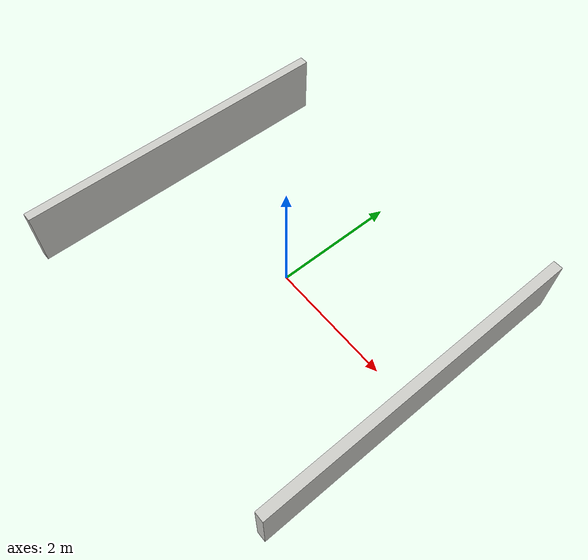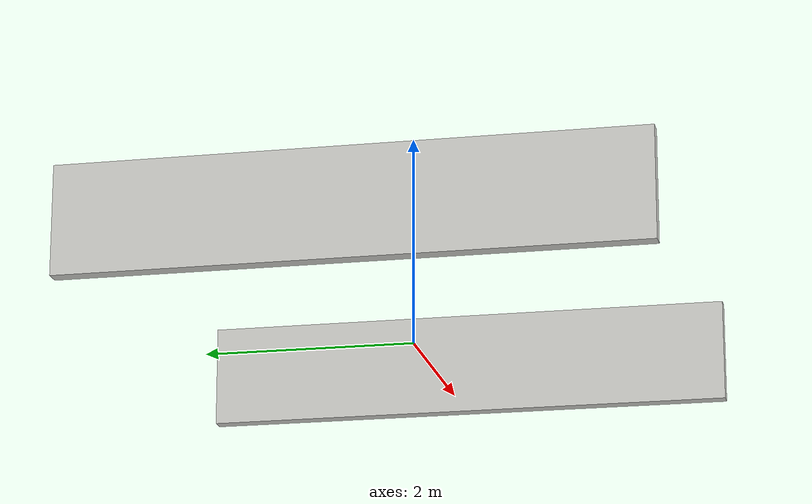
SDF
<?xml version='1.0'?>
<sdf version='1.6'>
  <model name='room_3x3_channel'>
    <static>1</static>
    <pose frame=''>0 0 0 0 -0 0</pose>
    <link name='Wall_1'>
      <collision name='Wall_1_Collision'>
        <geometry>
          <box>
            <size>5.25 0.15 1.0</size>
          </box>
        </geometry>
        <pose frame=''>0 0 0.5 0 -0 0</pose>
      </collision>
      <visual name='Wall_1_Visual'>
        <pose frame=''>0 0 0.5 0 -0 0</pose>
        <geometry>
          <box>
            <size>5.25 0.15 1.0</size>
          </box>
        </geometry>
        <material>
          <script>
            <uri>file://media/materials/scripts/gazebo.material</uri>
            <name>Gazebo/CeilingTiled</name>
          </script>
          <ambient>1 0.764706 0.305882 1</ambient>
        </material>
      </visual>
      <pose frame=''>-2.69653 -0.003278 0 0 0 -1.5708</pose>
    </link>
    <link name='Wall_2'>
      <collision name='Wall_2_Collision'>
        <geometry>
          <box>
            <size>5.25 0.15 1.0</size>
          </box>
        </geometry>
        <pose frame=''>0 0 0.5 0 -0 0</pose>
      </collision>
      <visual name='Wall_2_Visual'>
        <pose frame=''>0 0 0.5 0 -0 0</pose>
        <geometry>
          <box>
            <size>5.25 0.15 1.0</size>
          </box>
        </geometry>
        <material>
          <script>
            <uri>file://media/materials/scripts/gazebo.material</uri>
            <name>Gazebo/CeilingTiled</name>
          </script>
          <ambient>1 0.764706 0.305882 1</ambient>
        </material>
      </visual>
      <pose frame=''>2.69688 -0.000452 0 0 0 -1.5708</pose>
    </link>
  </model>
</sdf>
